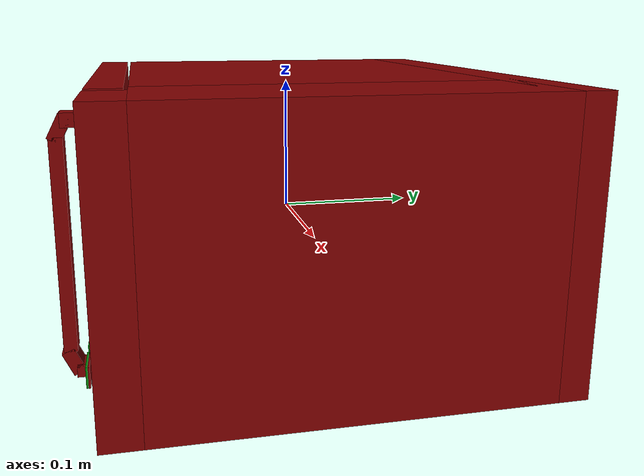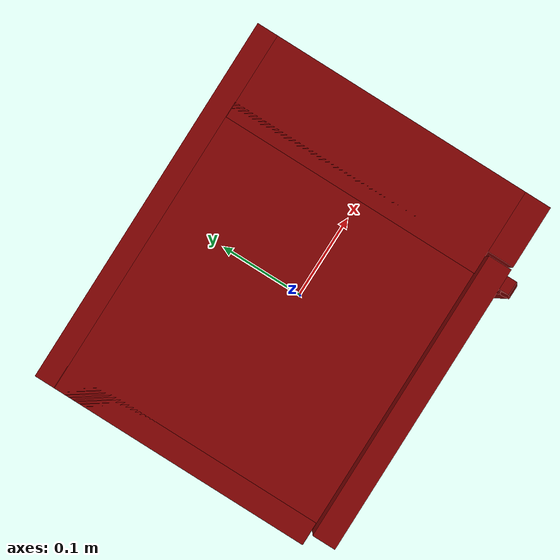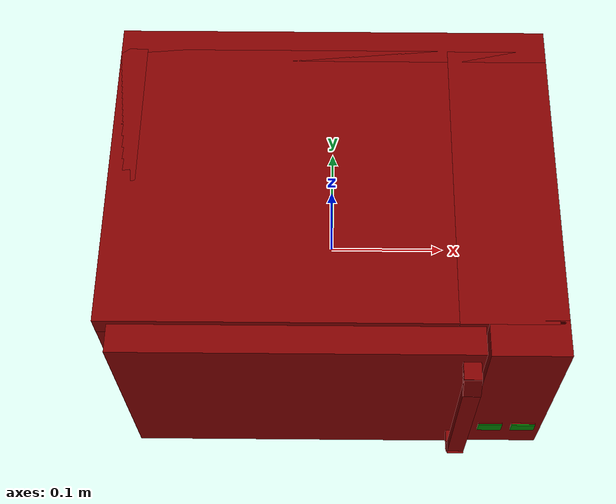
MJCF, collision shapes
<mujoco model="model">
  <compiler angle="radian"/>
  <asset>
    <mesh file="visuals/door.obj" name="door_vis"/>
    <mesh file="visuals/door_Clear.obj" name="door_Clear_vis"/>
    <mesh file="visuals/Body001.obj" name="Body001_vis"/>
    <mesh file="visuals/Button001.obj" name="Button001_vis"/>
    <mesh file="visuals/Button002.obj" name="Button002_vis"/>
    <mesh file="visuals/Disc001.obj" name="Disc001_vis"/>
    <texture file="visuals/T_BC001.png" name="Body001_material" type="2d"/>
    <material name="Body001_material" rgba="1 1 1 1.0" texture="Body001_material" shininess="0.4472135901451111" specular="0.3103448502657381"/>
    <texture file="visuals/T_BC001.png" name="door_material" type="2d"/>
    <material name="door_material" rgba="1 1 1 1.0" texture="door_material" shininess="0.4472135901451111" specular="0.3103448502657381"/>
    <material name="door_Clear_material" rgba="0.04023253172636032 0.04023253172636032 0.04023253172636032 0.8500000238418579" shininess="0.4472135901451111" specular="0.3103448502657381"/>
    <texture file="visuals/T_BC001.png" name="Button001_material" type="2d"/>
    <material name="Button001_material" rgba="1 1 1 1.0" texture="Button001_material" shininess="0.4472135901451111" specular="0.3103448502657381"/>
    <texture file="visuals/T_BC001.png" name="Button002_material" type="2d"/>
    <material name="Button002_material" rgba="1 1 1 1.0" texture="Button002_material" shininess="0.4472135901451111" specular="0.3103448502657381"/>
    <texture file="visuals/T_BC001.png" name="Disc001_material" type="2d"/>
    <material name="Disc001_material" rgba="1 1 1 1.0" texture="Disc001_material" shininess="0.4472135901451111" specular="0.3103448502657381"/>
  </asset>
  <default>
    <default class="visual">
      <geom conaffinity="0" contype="0" group="1" type="mesh"/>
    </default>
    <default class="collision">
      <geom group="0" rgba="0.5 0 0 0.5"/>
    </default>
    <default class="spawn">
      <geom group="0" rgba="1 1 1 0.5" contype="0" conaffinity="0"/>
      <site group="0" rgba="1 1 1 0.5"/>
    </default>
    <default class="region">
      <geom group="1" conaffinity="0" contype="0" rgba="0 1 0 0"/>
    </default>
  </default>
  <worldbody>
    <body>
      <body name="object">
        <geom class="collision" type="box" pos="-0.03174293413758278 -0.002631165087223053 -0.06219571456313133" size="0.09754028171300888 0.09754028171300888 0.0019993516616523266" quat="1.0 0.0 0.0 0.0" name="tray" rgba="0 1 0 0.5"/>
        <geom class="collision" type="box" pos="0.14134280383586884 -0.15073508024215698 -0.05035025626420975" size="0.010447897017002106 0.0005088913603685796 0.006444849539548159" quat="1.0 0.0 0.0 0.0" name="stop_button" rgba="0.0 0.5 0 0.5"/>
        <geom class="collision" type="box" pos="0.17060823738574982 -0.15073508024215698 -0.05035025626420975" size="0.01044789794832468 0.0005088914767839015 0.006444848142564297" quat="1.0 0.0 0.0 0.0" name="start_button" rgba="0.0 0.5 0 0.5"/>
        <geom mesh="Body001_vis" type="mesh" solimp="0.998 0.998 0.001" solref="0.001 1" density="100" friction="0.95 0.3 0.1" class="visual" material="Body001_material"/>
        <geom class="collision" type="box" pos="-7.421476766467094e-10 0.1484101116657257 0.00541971530765295" size="0.1879674643278122 0.016206443309783936 0.10097003728151321" quat="1.0 0.0 0.0 0.0"/>
        <geom class="collision" type="box" pos="-0.1763664186000824 0.01216458436101675 0.005419719032943249" size="0.011601049453020096 0.13234779238700867 0.10097003728151321" quat="1.0 0.0 0.0 0.0"/>
        <geom class="collision" type="box" pos="0.14459343254566193 0.01138284057378769 0.005419715773314238" size="0.04337405040860176 0.13212722539901733 0.10097004473209381" quat="1.0 0.0 0.0 0.0"/>
        <geom class="collision" type="box" pos="-0.03555731102824211 0.011772623285651207 0.09598636627197266" size="0.1524101346731186 0.13220150768756866 0.01040339469909668" quat="1.0 0.0 0.0 0.0"/>
        <geom class="collision" type="box" pos="-0.03566943109035492 0.0062049562111496925 -0.0847475528717041" size="0.15229803323745728 0.1264907717704773 0.01080277655273676" quat="1.0 0.0 0.0 0.0"/>
        <geom class="collision" type="box" pos="0.15627950429916382 -0.13230502605438232 0.005419715773314238" size="0.03168797120451927 0.015131713822484016 0.10097003728151321" quat="1.0 0.0 0.0 0.0"/>
        <geom class="collision" type="box" pos="-0.02871865965425968 0.16702479124069214 0.005614798050373793" size="0.13424161076545715 0.001754494966007769 0.07982275635004044" quat="1.0 0.0 0.0 0.0"/>
        <geom class="collision" type="cylinder" pos="-0.15463966131210327 -0.10257827490568161 -0.10302229970693588" size="0.005849474109709263 0.003367456141859293" quat="1.0 0.0 0.0 0.0"/>
        <geom class="collision" type="cylinder" pos="0.15480411052703857 -0.10257827490568161 -0.10302229970693588" size="0.005849474109709263 0.003367456141859293" quat="1.0 0.0 0.0 0.0"/>
        <geom class="collision" type="cylinder" pos="-0.15463966131210327 0.13112929463386536 -0.10302229970693588" size="0.005849474109709263 0.003367456141859293" quat="1.0 0.0 0.0 0.0"/>
        <geom class="collision" type="cylinder" pos="0.15480411052703857 0.13112929463386536 -0.10302229970693588" size="0.005849474109709263 0.003367456141859293" quat="1.0 0.0 0.0 0.0"/>
        <geom class="collision" type="box" pos="0.1543380469083786 0.01668742299079895 -0.09689715504646301" size="0.014465576969087124 0.1375555694103241 0.0042976136319339275" quat="1.0 0.0 0.0 0.0"/>
        <geom class="collision" type="box" pos="-0.15214432775974274 0.01668742299079895 -0.09689715504646301" size="0.014465576969087124 0.1375555694103241 0.0042976136319339275" quat="1.0 0.0 0.0 0.0"/>
        <body name="door">
          <joint axis="0.0 0.0 1.0" pos="-0.17535459995269775 -0.13428497314453125 0.009561501443386078" limited="true" name="microjoint" range="-1.5707963267948966 0.0" type="hinge" damping="1" frictionloss="1" armature=".01" stiffness="0.05"/>
          <geom mesh="door_vis" type="mesh" solimp="0.998 0.998 0.001" solref="0.001 1" density="100" friction="0.95 0.3 0.1" class="visual" material="door_material"/>
          <geom class="collision" type="box" pos="-0.027069643139839172 -0.13517749309539795 0.0037339837290346622" size="0.1487296223640442 0.011849697679281235 0.1033739298582077" quat="1.0 0.0 0.0 0.0"/>
          <geom class="collision" type="box" pos="0.1112891137599945 -0.1649865210056305 0.008280628360807896" size="0.00715562654659152 0.004358441103249788 0.06973301619291306" quat="1.0 0.0 0.0 0.0" name="door_handle"/>
          <geom class="collision" type="box" pos="0.1112891137599945 -0.16252881288528442 0.08310376107692719" size="0.00715562654659152 0.0043584443628787994 0.008434436284005642" quat="0.972201943397522 -0.2341439425945282 0.0 0.0"/>
          <geom class="collision" type="box" pos="0.1112891137599945 -0.1534487009048462 0.08829963207244873" size="0.00715562654659152 0.008529133163392544 0.004544645547866821" quat="1.0 0.0 0.0 0.0"/>
          <geom class="collision" type="box" pos="0.1112891137599945 -0.16328147053718567 -0.06893109530210495" size="0.00715562654659152 0.0043584443628787994 0.008434436284005642" quat="0.21568623185157776 -0.976462721824646 0.0 0.0"/>
          <geom class="collision" type="box" pos="0.1112891137599945 -0.1534487009048462 -0.07521360367536545" size="0.00715562654659152 0.008529133163392544 0.004544646013528109" quat="1.0 0.0 0.0 0.0"/>
          <body name="door_Clear">
            <geom mesh="door_Clear_vis" type="mesh" solimp="0.998 0.998 0.001" solref="0.001 1" density="100" friction="0.95 0.3 0.1" class="visual" material="door_Clear_material"/>
            <geom class="collision" type="box" pos="-0.03144317865371704 -0.1371697187423706 0.005138075444847345" size="0.1399315446615219 0.003317381953820586 0.07827337086200714" quat="1.0 0.0 0.0 0.0"/>
          </body>
        </body>
        <body name="Button001">
          <joint axis="0.0 1.0 0.0" pos="0.14124655723571777 -0.1479293704032898 -0.05022714287042618" limited="true" name="Button001_joint" range="0.0 0.003" type="slide" damping="1" frictionloss="1" armature=".01" stiffness="0.05"/>
          <geom mesh="Button001_vis" type="mesh" solimp="0.998 0.998 0.001" solref="0.001 1" density="100" friction="0.95 0.3 0.1" class="visual" material="Button001_material"/>
          <geom class="collision" type="box" pos="0.14134280383586884 -0.14940720796585083 -0.05035025626420975" size="0.010447883047163486 0.0005088904872536659 0.0064448644407093525" quat="1.0 0.0 0.0 0.0"/>
        </body>
        <body name="Button002">
          <joint axis="0.0 1.0 0.0" pos="0.17057493329048157 -0.1479293704032898 -0.05022714287042618" limited="true" name="Button002_joint" range="0.0 0.003" type="slide" damping="1" frictionloss="1" armature=".01" stiffness="0.05"/>
          <geom mesh="Button002_vis" type="mesh" solimp="0.998 0.998 0.001" solref="0.001 1" density="100" friction="0.95 0.3 0.1" class="visual" material="Button002_material"/>
          <geom class="collision" type="box" pos="0.17060823738574982 -0.14940720796585083 -0.05035025626420975" size="0.010447895154356956 0.0005088913021609187 0.006444850936532021" quat="1.0 0.0 0.0 0.0"/>
        </body>
        <body name="Disc001">
          <joint axis="0.0 0.0 1.0" pos="-0.031159598380327225 -0.0032050125300884247 -0.069935142993927" limited="false" name="Disc001_joint" range="0 360" type="hinge" damping="1" frictionloss="1" armature=".01" stiffness="0.05"/>
          <geom mesh="Disc001_vis" type="mesh" solimp="0.998 0.998 0.001" solref="0.001 1" density="100" friction="0.95 0.3 0.1" class="visual" material="Disc001_material"/>
          <geom class="collision" type="cylinder" pos="-0.03070881962776184 -0.004263993818312883 -0.06871001422405243" size="0.1008535623550415 0.0024767254944890738" quat="1.0 0.0 0.0 0.0"/>
        </body>
        <geom class="region" name="reg_main" type="box" pos="0.0 0.010639645159244537 0.0" size="0.1879674792289734 0.1581396460533142 0.10638976097106934"/>
        <geom class="region" name="reg_int" type="box" pos="-0.02841027081012726 0.0075728073716163635 0.005777951329946518" size="0.13560014963150024 0.12527542561292648 0.07947513088583946"/>
      </body>
    </body>
  </worldbody>
  <actuator>
    <motor name="microjoint_actuator" joint="microjoint" gear="10"/>
    <motor name="Button001_joint_actuator" joint="Button001_joint" gear="0.5"/>
    <motor name="Button002_joint_actuator" joint="Button002_joint" gear="0.5"/>
    <motor name="Disc001_joint_actuator" joint="Disc001_joint" gear="0.5"/>
  </actuator>
</mujoco>
